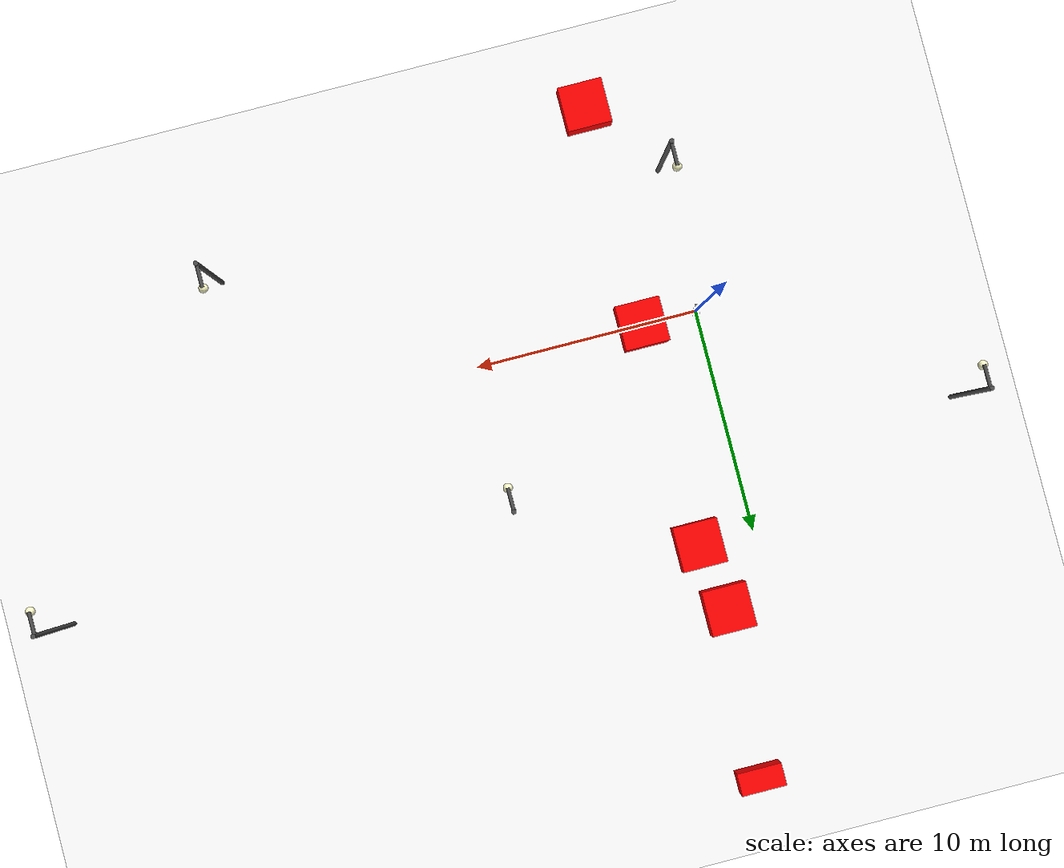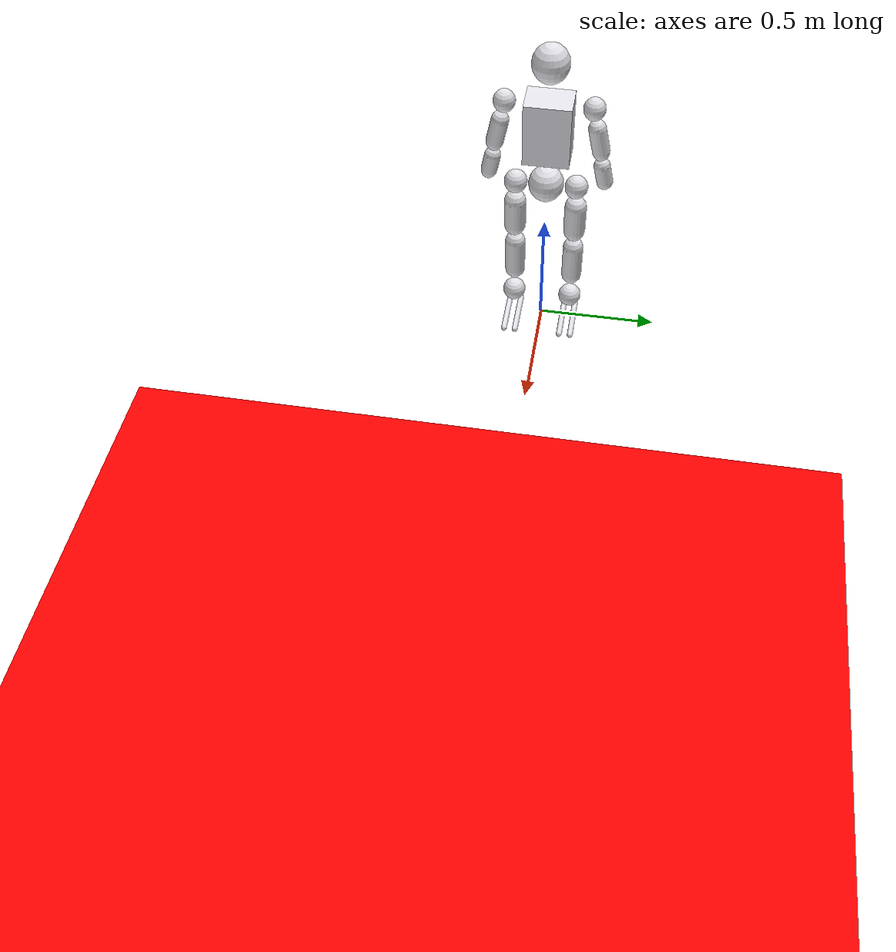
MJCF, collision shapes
<mujoco model="phybot_street_scene">
  <compiler angle="radian" meshdir="../meshes" autolimits="true"/>
  <option timestep="0.002" iterations='10' solver='PGS' gravity='0 0 -9.81' >
  </option>
  <size njmax="2000" nconmax="500" />

  <visual>
      <quality shadowsize='8192'/>
      <map force="0.1" zfar="1000" znear='0.05'/>
      <rgba haze="0.15 0.25 0.35 1"/>
      <global offwidth="2560" offheight="1440" elevation="-20" azimuth="120"/>
  </visual>

  <statistic center="0 0 1" extent="10"/>

  <default>
    <geom  condim='4' solref='0.001 2' friction='1.0 0.5 0.5'/>
    <equality solref='0.001 2'/>
  </default>

  <default>
    <default class="phybot_mini_mark2">
      <joint damping="0.1" armature="0.1"/>
      <default class="visual">
        <geom type="mesh" contype="0" conaffinity="0" group="2" />
      </default>
      <default class="collision">
        <geom group="3" mass="0" density="0" friction="1.0 0.5 0.5" />
      </default>
    </default>

    <!-- 障碍物默认属性：有碰撞，有质量(或固定) -->
    <default class="obstacle">
        <geom condim="3" contype="1" conaffinity="1" friction="0.8 0.5 0.5"/>
    </default>
  </default>

  <!-- ==================== 资源定义 ==================== -->
  <asset>
    <!-- 1. 机器人网格 -->
    <mesh name="base_link" file="base_link.STL"/>
    <mesh name="left_hip_pitch" file="left_hip_pitch.STL"/>
    <mesh name="left_hip_roll" file="left_hip_roll.STL"/>
    <mesh name="left_hip_yaw" file="left_hip_yaw.STL"/>
    <mesh name="left_knee" file="left_knee.STL"/>
    <mesh name="right_ankle_pitch" file="right_ankle_pitch.STL"/>
    <mesh name="left_ankle_roll" file="left_ankle_roll.STL"/>
    <mesh name="right_hip_pitch" file="right_hip_pitch.STL"/>
    <mesh name="right_hip_roll" file="right_hip_roll.STL"/>
    <mesh name="right_hip_yaw" file="right_hip_yaw.STL"/>
    <mesh name="right_knee" file="right_knee.STL"/>
    <mesh name="right_ankle_roll" file="right_ankle_roll.STL"/>
    <mesh name="torso" file="torso.STL"/>
    <mesh name="left_shoulder_pitch" file="left_shoulder_pitch.STL"/>
    <mesh name="left_shoulder_roll" file="left_shoulder_roll.STL"/>
    <mesh name="left_shoulder_yaw" file="left_shoulder_yaw.STL"/>
    <mesh name="left_elbow_pitch" file="left_elbow_pitch.STL"/>
    <mesh name="right_shoulder_pitch" file="right_shoulder_pitch.STL"/>
    <mesh name="right_shoulder_roll" file="right_shoulder_roll.STL"/>
    <mesh name="right_shoulder_yaw" file="right_shoulder_yaw.STL"/>
    <mesh name="right_elbow_pitch" file="right_elbow_pitch.STL"/>
    <mesh name="right_elbow_yaw" file="right_elbow_yaw.STL"/>
    <mesh name="neck_yaw" file="neck_yaw.STL"/>
    <mesh name="neck_pitch" file="neck_pitch.STL"/>

    <texture type="skybox" builtin="gradient" rgb1=".3 .5 .7" rgb2="0 0 0" width="32" height="512"/>

    <!-- 2. 场景纹理 -->
    <!-- [ROAD] 地面 -->
    <texture name="tex_asphalt" type="2d" file="textures/sidewalk.png"/>
    <material name="mat_road" texture="tex_asphalt" texrepeat="1 1" reflectance="0" shininess="0" specular="0.1" texuniform="true"/>

    <!-- 人行道 -->
    <texture name="tex_sidewalk" type="2d" file="textures/sidewalk.png"/>
    <material name="mat_sidewalk" texture="tex_sidewalk" texrepeat="2 2.5" reflectance="0" shininess="0" specular="0.1" texuniform="true"/>

    <!--楼房侧面 -->
    <texture name="tex_building" type="2d" file="textures/building1.png"/>

    <!-- 添加 texuniform="true"，texrepeat 为 1 1 (每米重复1次) -->
    <!-- 保证细节清晰 -->
    <material name="mat_building_real_1" texture="tex_building" texrepeat="1 1" texuniform="true" emission="0.3" reflectance="0" shininess="0" rgba="1 1 1 1"/>

    <material name="mat_building_real_2" texture="tex_building" texrepeat="1 1" texuniform="true" emission="0.3" reflectance="0" shininess="0" rgba="0.9 0.9 1.0 1"/>

    <!-- 屋顶 -->
    <texture name="tex_roof" type="2d" builtin="flat" rgb1="0.4 0.4 0.45" width="128" height="128"/>
    <material name="mat_roof" texture="tex_roof" reflectance="0.05"/>

    <!-- 汽车材质 -->
    <material name="mat_car_body" rgba="0.8 0.1 0.1 1" specular="0.8" shininess="0.5" reflectance="0.3"/>
    <material name="mat_car_body_blue" rgba="0.1 0.1 0.8 1" specular="0.8" shininess="0.5" reflectance="0.3"/>
    <material name="mat_car_glass" rgba="0.1 0.1 0.2 0.8" specular="1" shininess="0.9" reflectance="0.5"/>
    <material name="mat_car_wheel" rgba="0.1 0.1 0.1 1" specular="0" shininess="0"/>
    <!-- 行人材质 -->
    <material name="mat_person_1" rgba="0.2 0.6 0.2 1"/>
    <material name="mat_person_2" rgba="0.8 0.5 0.2 1"/>
    <material name="mat_skin" rgba="0.9 0.7 0.6 1"/>
    <!-- 路灯材质 -->
    <material name="mat_pole" rgba="0.3 0.3 0.3 1" specular="0.5" shininess="0.5"/>
    <material name="mat_light_bulb" rgba="1 1 0.8 1" emission="1"/>
    <!-- 路障材质 -->
    <material name="mat_cone_orange" rgba="1 0.5 0 1" reflectance="0.5"/>

    <mesh name="mesh_table_chairs" file="Table And Chairs.obj" scale="0.02 0.02 0.02"/>
    <material name="mat_wood" rgba="0.6 0.4 0.2 1" specular="0.1" shininess="0.1"/>

    <mesh name="mesh_car" file="car.obj" scale="0.03 0.03 0.03"/>
    <material name="mat_car" rgba="0.8 0.1 0.1 1" specular="0.1" shininess="0.1"/>

    <mesh name="mesh_tree" file="tree.obj" scale="0.7 0.7 0.7"/>
    <texture name="tex_tree" type="2d" file="textures/tree.png"/>
    <material name="mat_tree" texture="tex_tree" rgba="0.2 0.8 0.1 1" specular="0.1" shininess="0.1"/>

    <mesh name="mesh_human" file="human.obj" scale="0.015 0.015 0.015"/>
    <material name="mat_human" rgba="0.2 0.4 0.3 1" specular="0.1" shininess="0.1"/>

  </asset>

  <!-- ==================== 场景构建 ==================== -->
  <worldbody>
    <!-- 增加一点环境光(ambient)，确保暗部也有细节 -->
    <light pos="0 0 15" dir="0 0 -1" directional="true" castshadow="true" diffuse="0.9 0.9 0.9" specular="0.1 0.1 0.1"/>

    <!-- 地面 -->
    <geom name="road_ground" type="plane" pos="0 0 0" size="50 50 0.125" material="mat_road" condim="3" conaffinity="1" contype="1" rgba="1 1 1 1"/>

    <!-- 左侧路灯 -->
    <body name="streetlight_L1" pos="-10 6.5 0">
        <geom type="cylinder" size="0.1 3" pos="0 0 3" material="mat_pole" class="obstacle"/> <!-- 柱子 -->
        <geom type="cylinder" size="0.08 0.5" pos="0 -0.5 5.8" euler="1.57 0 0" material="mat_pole" class="obstacle"/> <!-- 横杆 -->
        <geom type="sphere" size="0.2" pos="0 -1.0 5.6" material="mat_light_bulb" class="obstacle"/> <!-- 灯泡 -->
        <light pos="0 -1.0 5.0" dir="0 0 -1" diffuse="0.8 0.8 0.6" attenuation="1 0 0"/> <!-- 真实点光源 -->
    </body>
    <body name="streetlight_L2" pos="10 6.5 0">
        <geom type="cylinder" size="0.1 3" pos="0 0 3" material="mat_pole" class="obstacle"/>
        <geom type="cylinder" size="0.08 0.5" pos="0 -0.5 5.8" euler="1.57 0 0" material="mat_pole" class="obstacle"/>
        <geom type="sphere" size="0.2" pos="0 -1.0 5.6" material="mat_light_bulb" class="obstacle"/>
    </body>
    <body name="streetlight_L3" pos="30 6.5 0">
        <geom type="cylinder" size="0.1 3" pos="0 0 3" material="mat_pole" class="obstacle"/>
        <geom type="cylinder" size="0.08 0.5" pos="0 -0.5 5.8" euler="1.57 0 0" material="mat_pole" class="obstacle"/>
        <geom type="sphere" size="0.2" pos="0 -1.0 5.6" material="mat_light_bulb" class="obstacle"/>
    </body>
    <!-- 右侧路灯 -->
    <body name="streetlight_R1" pos="0 -6.5 0">
        <geom type="cylinder" size="0.1 3" pos="0 0 3" material="mat_pole" class="obstacle"/>
        <geom type="cylinder" size="0.08 0.5" pos="0 0.5 5.8" euler="1.57 0 0" material="mat_pole" class="obstacle"/>
        <geom type="sphere" size="0.2" pos="0 1.0 5.6" material="mat_light_bulb" class="obstacle"/>
    </body>
    <body name="streetlight_R2" pos="20 -6.5 0">
        <geom type="cylinder" size="0.1 3" pos="0 0 3" material="mat_pole" class="obstacle"/>
        <geom type="cylinder" size="0.08 0.5" pos="0 0.5 5.8" euler="1.57 0 0" material="mat_pole" class="obstacle"/>
        <geom type="sphere" size="0.2" pos="0 1.0 5.6" material="mat_light_bulb" class="obstacle"/>
    </body>
    <!-- 目标点 -->
    <body name="target_marker_body" pos="0 0 0">
        <geom name="target_marker" type="sphere" size="0.01" rgba="0 1 0 1" contype="0" conaffinity="0"/>
    </body>

        <!-- 桌椅障碍物 -->
    <body name="obstacle_furniture" pos="2.5 0 0.05" euler="0 0 0">
        <!-- ================== 视觉层 (Visual) ================== -->
        <!-- group="2" 是之前定义的视觉组，contype/conaffinity=0 表示无物理碰撞 -->
        <geom type="mesh" mesh="mesh_table_chairs" material="mat_wood"
              contype="0" conaffinity="0" group="2"
              pos="0 0 0" euler="1.57 0 0"/>
              <!-- 注意：很多 obj 导入后会躺在地上，通常需要绕 X 轴转 90 度 (1.57 弧度) 立起来，如果方向不对请调整这里 -->
        <!-- ================== 物理层 (Collision) ================== -->
        <!-- 这一层负责“挡路”，用简单的几何体 -->
        <!-- 用一个隐形的大盒子把桌椅全包起来，机器人走不过去 -->
        <!-- 假设桌椅占地 2米x2米，高1米 -->
        <geom type="box" size="1.0 1.0 0.5" pos="0 0 0.5"
              class="obstacle" group="3" rgba="1 0 0 0.5"/>
              <!-- rgba最后一位是0表示全透明(隐形)。调试时可以改成 0.5 看看盒子在哪 -->
    </body>

    <body name="obstacle_furniture1" pos="2 13 0.05" euler="0 0 0">
        <geom type="mesh" mesh="mesh_table_chairs" material="mat_wood"
              contype="0" conaffinity="0" group="2"
              pos="0 0 0" euler="1.57 0 0"/>
        <geom type="box" size="1.0 1.0 0.5" pos="0 0 0.5"
              class="obstacle" group="3" rgba="1 0 0 0.5"/>
    </body>

    <body name="obstacle_tree" pos="2.5 10 -0.1" euler="0 0 0">
	<geom type="mesh" mesh="mesh_tree" material="mat_tree"
	      contype="0" conaffinity="0" group="2"
	      pos="0 0 0" euler="1.57 0 0"/>
	<geom type="box" size="1.0 1.0 0.5" pos="0 0 0.5"
	      class="obstacle" group="3" rgba="1 0 0 0.5"/>
    </body>

    <body name="obstacle_tree1" pos="2.5 -10 -0.1" euler="0 0 0">
	<geom type="mesh" mesh="mesh_tree" material="mat_tree"
	      contype="0" conaffinity="0" group="2"
	      pos="0 0 0" euler="1.57 0 0"/>
	<geom type="box" size="1.0 1.0 0.5" pos="0 0 0.5"
	      class="obstacle" group="3" rgba="1 0 0 0.5"/>
    </body>

    <body name="obstacle_human" pos="2.5 20 -0.1" euler="-1.57 0 0">
	<geom type="mesh" mesh="mesh_human" material="mat_human"
	      contype="0" conaffinity="0" group="2"
	      pos="0 0 0" euler="1.57 0 0"/>
	<geom type="box" size="1.0 1.0 0.5" pos="0 0 0.5"
	      class="obstacle" group="3" rgba="1 0 0 0.5"/>
    </body>

    <!-- 机器人主体 -->
    <body name="base_link" pos="0 0.0 0.695" euler="0 0 0" childclass="phybot_mini_mark2">
      <inertial pos="0.00029935 -1.8119e-07 0.023406" quat="0.999999 0.000213974 0.00165245 0.00039263" mass="3.5" diaginertia="0.01330575 0.01205119 0.00625631"/>
      <joint name="floating_base_joint" type="free" limited="false" actuatorfrclimited="false"/>
      <geom type="mesh" contype="0" conaffinity="0" group="1" density="0" rgba="0.86667 0.86667 0.8902 1" mesh="base_link"/>
      <geom type="sphere" size="0.07" pos="0.00259459 0 0.00656728" rgba="0.86667 0.86667 0.8902 1"/>

      <!-- Left Leg -->
      <body name="left_hip_pitch" pos="0 0.0578 -0.00010315">
        <inertial pos="-0.010451 0.062682 8.8167e-05" quat="0.083119 0.701134 -0.0837025 0.703204" mass="0.91049" diaginertia="0.000839681 0.000776212 0.000684886"/>
        <joint name="left_hip_pitch" pos="0 0 0" axis="0 1 0" range="-2.62 2.62" actuatorfrcrange="-200 200"/>
        <geom pos="0 0 0" type="mesh" contype="0" conaffinity="0" group="1" density="0" rgba="0.86667 0.86667 0.8902 1" mesh="left_hip_pitch"/>
        <geom size="0.046" pos="-0.00436918 0.0615005 -0.00236015" rgba="0.86667 0.86667 0.8902 1"/>
        <body name="left_hip_roll" pos="0 0.0645 0.00010315">
            <inertial pos="0.017315 7.7056e-06 -0.027368" quat="0.938777 0.00153671 0.344522 0.000938653" mass="0.25544" diaginertia="0.000407279 0.00034617 0.000257411"/>
            <joint name="left_hip_roll" pos="0 0 0" axis="1 0 0" range="-0.1 2.79" actuatorfrcrange="-80 80"/>
            <geom type="mesh" contype="0" conaffinity="0" group="1" density="0" rgba="0.86667 0.86667 0.8902 1" mesh="left_hip_roll"/>
            <body name="left_hip_yaw" pos="5.177e-05 0 -0.0555">
                <inertial pos="-0.000660698 -0.000269523 -0.0709022" quat="0.99961 -0.00783722 0.0251877 -0.00915786" mass="1.18423" diaginertia="0.00392986 0.00371214 0.0011681"/>
                <joint name="left_hip_yaw" pos="0 0 0" axis="0 0 1" range="-2.09 2.09" actuatorfrcrange="-58 58"/>
                <geom type="mesh" contype="0" conaffinity="0" group="1" density="0" rgba="0.86667 0.86667 0.8902 1" mesh="left_hip_yaw"/>
                <geom name="sphere_3" size="0.044 0.06" pos="0 0 -0.1" type="capsule" rgba="0.86667 0.86667 0.8902 1"/>
                <body name="left_knee" pos="-0.015 0 -0.178">
                    <inertial pos="0.00788863 8.73965e-05 -0.0948138" quat="0.661405 -0.0155255 -0.0140926 0.749736" mass="1.93631" diaginertia="0.0251976 0.0251419 0.00203863"/>
                    <joint name="left_knee" pos="0 0 0" axis="0 1 0" range="0 2.44" actuatorfrcrange="-80 80"/>
                    <geom type="mesh" contype="0" conaffinity="0" group="1" density="0" rgba="0.86667 0.86667 0.8902 1" mesh="left_knee"/>
                    <geom name="sphere_4" size="0.042 0.075" pos="0 0 -0.16" type="capsule" rgba="0.86667 0.86667 0.8902 1"/>
                    <body name="left_ankle_pitch" pos="0.015 0 -0.324">
                        <inertial pos="-0.000464283 -0.000367434 -0.0356355" quat="0.997287 0.00504669 0.0068855 -0.0731111" mass="1.5" diaginertia="0.00275313 0.00275183 0.000964559"/>
                        <joint name="left_ankle_pitch" pos="0 0 0" axis="0 1 0" range="-1.4 1.4" actuatorfrcrange="-58 58"/>
                        <geom type="mesh" contype="0" conaffinity="0" group="1" density="0" rgba="0.86667 0.86667 0.8902 1" mesh="right_ankle_pitch"/>
                        <geom size="0.048" pos="0 0 -0.0209636" rgba="0.86667 0.86667 0.8902 1"/>
                        <body name="left_ankle_roll" pos="0.038948 4.7715e-05 -0.069">
                            <inertial pos="-0.00706776 4.03562e-05 -0.0350697" quat="0.00111808 0.725531 0.0017096 0.688187" mass="1.36346" diaginertia="0.0069294 0.00649197 0.00171846"/>
                            <joint name="left_ankle_roll" pos="0 0 0" axis="1 0 0" range="-0.61 0.61" actuatorfrcrange="-58 58"/>
                            <geom pos="0 0 0" type="mesh" contype="0" conaffinity="0" group="1" density="0" rgba="0.86667 0.86667 0.8902 1" mesh="left_ankle_roll"/>
                            <geom name="left_ankle_roll_1" size="0.012 0.1" pos="0.008 -0.024 -0.052" quat="0.000563312 0.707388 0.000562864 -0.706825" type="capsule" rgba="0.86667 0.86667 0.8902 1"/>
                            <geom name="left_ankle_roll_2" size="0.012 0.1" pos="0.008 0.024 -0.052" quat="0.000563312 0.707388 0.000562864 -0.706825" type="capsule" rgba="0.86667 0.86667 0.8902 1"/>
                        </body>
                    </body>
                </body>
            </body>
        </body>
      </body>

      <!-- Right Leg -->
      <body name="right_hip_pitch" pos="0 -0.0598 0">
        <inertial pos="-0.0104986 -0.0606821 1.49808e-05" quat="-0.0841103 0.703157 0.0835219 0.701085" mass="0.910488" diaginertia="0.000839521 0.000776107 0.000684841"/>
        <joint name="right_hip_pitch" pos="0 0 0" axis="0 1 0" range="-2.62 2.62" actuatorfrcrange="-200 200"/>
        <geom pos="0 0 0" type="mesh" contype="0" conaffinity="0" group="1" density="0" rgba="0.86667 0.86667 0.8902 1" mesh="right_hip_pitch"/>
        <geom size="0.046" pos="-0.00436918 -0.0615005 -0.00236015" rgba="0.86667 0.86667 0.8902 1"/>
        <body name="right_hip_roll" pos="0 -0.0625 0">
            <inertial pos="0.0172664 8.09741e-06 -0.0273683" quat="0.938745 0.0015365 0.344609 0.000938282" mass="0.255436" diaginertia="0.00040732 0.00034621 0.00025742"/>
            <joint name="right_hip_roll" pos="0 0 0" axis="1 0 0" range="-2.79 0.1" actuatorfrcrange="-80 80"/>
            <geom type="mesh" contype="0" conaffinity="0" group="1" density="0" rgba="0.86667 0.86667 0.8902 1" mesh="right_hip_roll"/>
            <body name="right_hip_yaw" pos="0 0 -0.0555">
                <inertial pos="-0.00162439 0.000656584 -0.113596" quat="0.998814 0.0138718 0.0459246 0.00834949" mass="0.434265" diaginertia="0.00195143 0.00173094 0.000762913"/>
                <joint name="right_hip_yaw" pos="0 0 0" axis="0 0 1" range="-2.09 2.9" actuatorfrcrange="-58 58"/>
                <geom type="mesh" contype="0" conaffinity="0" group="1" density="0" rgba="0.86667 0.86667 0.8902 1" mesh="right_hip_yaw"/>
                <geom size="0.044 0.06" pos="0 0 -0.1" type="capsule" rgba="0.86667 0.86667 0.8902 1"/>
                <body name="right_knee" pos="-0.015 0 -0.178">
                    <inertial pos="0.00748147 0.000468573 -0.0967989" quat="0.723297 -0.0149086 -0.0167715 0.690173" mass="1.87028" diaginertia="0.0249554 0.0249148 0.00200181"/>
                    <joint name="right_knee" pos="0 0 0" axis="0 1 0" range="0 2.44" actuatorfrcrange="-80 80"/>
                    <geom type="mesh" contype="0" conaffinity="0" group="1" density="0" rgba="0.86667 0.86667 0.8902 1" mesh="right_knee"/>
                    <geom size="0.042 0.075" pos="0 0 -0.16" type="capsule" rgba="0.86667 0.86667 0.8902 1"/>
                    <body name="right_ankle_pitch" pos="0.015 0 -0.324">
                        <inertial pos="-0.00043695 0.000369141 -0.0400577" quat="0.999953 -0.00483678 0.00579502 0.0060279" mass="1.5" diaginertia="0.00323949 0.00323821 0.000964532"/>
                        <joint name="right_ankle_pitch" pos="0 0 0" axis="0 1 0" range="-1.4 1.4" actuatorfrcrange="-58 58"/>
                        <geom type="mesh" contype="0" conaffinity="0" group="1" density="0" rgba="0.86667 0.86667 0.8902 1" mesh="right_ankle_pitch"/>
                        <geom size="0.048" pos="0 0 -0.0209636" rgba="0.86667 0.86667 0.8902 1"/>
                        <body name="right_ankle_roll" pos="0.039 -4.436e-05 -0.08">
                            <inertial pos="-0.00935957 6.26081e-05 -0.025329" quat="0.00182563 0.727657 0.000844849 0.685938" mass="1.2444" diaginertia="0.00675175 0.00631519 0.00159091"/>
                            <joint name="right_ankle_roll" pos="0 0 0" axis="1 0 0" range="-0.61 0.61" actuatorfrcrange="-58 58"/>
                            <geom type="mesh" contype="0" conaffinity="0" group="1" density="0" rgba="0.86667 0.86667 0.8902 1" mesh="right_ankle_roll"/>
                            <geom name="right_ankle_roll_1" size="0.012 0.1" pos="0.008 0.024 -0.042" quat="0.000563312 0.707388 0.000562864 -0.706825" type="capsule" rgba="0.86667 0.86667 0.8902 1"/>
                            <geom name="right_ankle_roll_2" size="0.012 0.1" pos="0.008 -0.024 -0.042" quat="0.000563312 0.707388 0.000562864 -0.706825" type="capsule" rgba="0.86667 0.86667 0.8902 1"/>
                        </body>
                    </body>
                </body>
            </body>
        </body>
      </body>

      <!-- Torso and Arms -->
      <body name="waist_yaw" pos="0 0 0.255">
        <inertial pos="-0.000621633 -0.00060824 0.0627254" quat="0.999923 -0.000821252 -0.0121552 -0.00232251" mass="8.843" diaginertia="0.120218 0.108604 0.0328178"/>
        <joint name="waist_yaw" pos="0 0 0" axis="0 0 1" range="-2.62 2.62" actuatorfrcrange="-58 58"/>
        <geom type="mesh" contype="0" conaffinity="0" group="1" density="0" rgba="0.86667 0.86667 0.8902 1" mesh="torso"/>
        <geom size="0.063 0.09 0.125" pos="0.00027658 0.0003768 0" type="box" rgba="0.86667 0.86667 0.8902 1"/>
        <geom pos="0 0 0.148" type="mesh" contype="0" conaffinity="0" group="1" density="0" rgba="0.86667 0.86667 0.8902 1" mesh="neck_yaw"/>
        <geom pos="0 0 0.2075" type="mesh" contype="0" conaffinity="0" group="1" density="0" rgba="0.86667 0.86667 0.8902 1" mesh="neck_pitch"/>
        <geom size="0.07" pos="0 0 0.263466" rgba="0.86667 0.86667 0.8902 1"/>

        <!-- Left Arm -->
        <body name="left_shoulder_pitch" pos="0 0.1065 0.099">
            <inertial pos="0.00071542 0.053508 -3.9443e-09" quat="0.5078 0.492077 -0.5078 0.492077" mass="0.783062" diaginertia="0.00061796 0.000532075 0.000496755"/>
            <joint name="left_shoulder_pitch" pos="0 0 0" axis="0 1 0" range="-2.62 2.62" actuatorfrcrange="-58 58"/>
            <geom pos="0 0 0" type="mesh" contype="0" conaffinity="0" group="1" density="0" rgba="0.86667 0.86667 0.8902 1" mesh="left_shoulder_pitch"/>
            <geom size="0.042" pos="0 0.059495 0" rgba="0.86667 0.86667 0.8902 1"/>
            <body name="left_shoulder_roll" pos="0 0.0575 0">
                <inertial pos="0.022804 0.0039333 -0.017788" quat="0.940833 0.102634 0.321036 0.0351355" mass="0.17719" diaginertia="0.000256392 0.000194645 0.000139602"/>
                <joint name="left_shoulder_roll" pos="0 0 0" axis="1 0 0" range="-0.26 2.62" actuatorfrcrange="-58 58"/>
                <geom type="mesh" contype="0" conaffinity="0" group="1" density="0" rgba="0.86667 0.86667 0.8902 1" mesh="left_shoulder_roll"/>
                <body name="left_shoulder_yaw" pos="0.00125 0.0097398 -0.043933" quat="0.994056 0.108869 0 0">
                    <inertial pos="-0.00020494 -0.0060826 -0.12095" quat="0.997368 0.0724149 -0.00112664 0.00331653" mass="1.24393" diaginertia="0.00517735 0.00508953 0.000754096"/>
                    <joint name="left_shoulder_yaw" pos="0 0 0" axis="0 0 1" range="-1.75 1.75" actuatorfrcrange="-9 9"/>
                    <geom type="mesh" contype="0" conaffinity="0" group="1" density="0" rgba="0.86667 0.86667 0.8902 1" mesh="left_shoulder_yaw"/>
                    <geom size="0.034 0.05" pos="0 0 -0.0868437" type="capsule" rgba="0.86667 0.86667 0.8902 1"/>
                    <body name="left_elbow_pitch" pos="0 0 -0.163">
                        <inertial pos="-0.00164426 -0.00265918 -0.140605" quat="0.974282 0.00758825 -0.012909 -0.224834" mass="1.06257" diaginertia="0.0069157 0.00687241 0.000534144"/>
                        <joint name="left_elbow_pitch" pos="0 0 0" axis="0 1 0" range="-2.27 0.05" actuatorfrcrange="-58 58"/>
                        <geom pos="0 0 0" type="mesh" contype="0" conaffinity="0" group="1" density="0" rgba="0.86667 0.86667 0.8902 1" mesh="left_elbow_pitch"/>
                        <geom size="0.032 0.036" pos="0 -0.00576669 -0.072571" type="capsule" rgba="0.86667 0.86667 0.8902 1"/>
                    </body>
                </body>
            </body>
        </body>

        <!-- Right Arm -->
        <body name="right_shoulder_pitch" pos="0 -0.1065 0.099">
            <inertial pos="0.000715418 -0.0535077 3.94432e-09" quat="0.492077 0.5078 -0.492077 0.5078" mass="0.783062" diaginertia="0.00061796 0.000532075 0.000496755"/>
            <joint name="right_shoulder_pitch" pos="0 0 0" axis="0 1 0" range="-2.62 2.62" actuatorfrcrange="-58 58"/>
            <geom pos="0 0 0" type="mesh" contype="0" conaffinity="0" group="1" density="0" rgba="0.86667 0.86667 0.8902 1" mesh="right_shoulder_pitch"/>
            <geom size="0.042" pos="0 -0.059495 0" rgba="0.86667 0.86667 0.8902 1"/>
            <body name="right_shoulder_roll" pos="0 -0.0575 0">
                <inertial pos="0.0228047 -0.00395395 -0.0177819" quat="0.940632 -0.103353 0.321391 -0.0351805" mass="0.177189" diaginertia="0.000256475 0.000194466 0.00013972"/>
                <joint name="right_shoulder_roll" pos="0 0 0" axis="1 0 0" range="-2.62 0.26" actuatorfrcrange="-58 58"/>
                <geom type="mesh" contype="0" conaffinity="0" group="1" density="0" rgba="0.86667 0.86667 0.8902 1" mesh="right_shoulder_roll"/>
                <body name="right_shoulder_yaw" pos="0.00125 -0.0097398 -0.043933" quat="0.994056 -0.108869 0 0">
                    <inertial pos="-0.000488895 0.00349494 -0.0642143" quat="0.582591 -0.0233421 0.0367723 0.811598" mass="0.51393" diaginertia="0.00151826 0.00151437 0.000271098"/>
                    <joint name="right_shoulder_yaw" pos="0 0 0" axis="0 0 1" range="-1.75 1.75" actuatorfrcrange="-9 9"/>
                    <geom type="mesh" contype="0" conaffinity="0" group="1" density="0" rgba="0.86667 0.86667 0.8902 1" mesh="right_shoulder_yaw"/>
                    <geom size="0.034 0.05" pos="0 0 -0.0868437" type="capsule" rgba="0.86667 0.86667 0.8902 1"/>
                    <body name="right_elbow_pitch" pos="0 0 -0.163">
                        <inertial pos="-0.00163129 -0.0037679 -0.140601" quat="0.974683 -0.00789963 -0.0126972 0.223092" mass="1.06261" diaginertia="0.00691615 0.00687272 0.000534756"/>
                        <joint name="right_elbow_pitch" pos="0 0 0" axis="0 1 0" range="-2.27 0.05" actuatorfrcrange="-58 58"/>
                        <geom type="mesh" contype="0" conaffinity="0" group="1" density="0" rgba="0.86667 0.86667 0.8902 1" mesh="right_elbow_pitch"/>
                        <geom size="0.032 0.036" pos="0 0.00576669 -0.072571" type="capsule" rgba="0.86667 0.86667 0.8902 1"/>
                    </body>
                </body>
            </body>
        </body>

        <camera name="head_camera" pos="0.1 0 0" xyaxes="0 -1 0 0 0 1" fovy="57"/>

        <body name="imu_link" pos="-0.0 0 0.0">
            <inertial pos="0 0 0" mass="0" diaginertia="0 0 0" />
            <geom class="visual" type="sphere" rgba="0.792157 0.819608 0.933333 1" size="0.02" />
            <site name="site_imu" pos="0.01 0 0" size='0.01 0.01 0.01' group="4"/>
        </body>
      </body>
    </body>

     <!-- 轨迹点可视化 -->
    <geom name="goal" type="sphere" size="0.05" rgba="1 0 0 1" pos="0 0 -1"/>
    <!-- 50个轨迹点 -->
    <geom name="traj0" type="sphere" size="0.02" rgba="0 1 0 1" pos="0 0 -1"/>
    <geom name="traj1" type="sphere" size="0.02" rgba="0 1 0 1" pos="0 0 -1"/>
    <geom name="traj2" type="sphere" size="0.02" rgba="0 1 0 1" pos="0 0 -1"/>
    <geom name="traj3" type="sphere" size="0.02" rgba="0 1 0 1" pos="0 0 -1"/>
    <geom name="traj4" type="sphere" size="0.02" rgba="0 1 0 1" pos="0 0 -1"/>
    <geom name="traj5" type="sphere" size="0.02" rgba="0 1 0 1" pos="0 0 -1"/>
    <geom name="traj6" type="sphere" size="0.02" rgba="0 1 0 1" pos="0 0 -1"/>
    <geom name="traj7" type="sphere" size="0.02" rgba="0 1 0 1" pos="0 0 -1"/>
    <geom name="traj8" type="sphere" size="0.02" rgba="0 1 0 1" pos="0 0 -1"/>
    <geom name="traj9" type="sphere" size="0.02" rgba="0 1 0 1" pos="0 0 -1"/>
    <geom name="traj10" type="sphere" size="0.02" rgba="0 1 0 1" pos="0 0 -1"/>
    <geom name="traj11" type="sphere" size="0.02" rgba="0 1 0 1" pos="0 0 -1"/>
    <geom name="traj12" type="sphere" size="0.02" rgba="0 1 0 1" pos="0 0 -1"/>
    <geom name="traj13" type="sphere" size="0.02" rgba="0 1 0 1" pos="0 0 -1"/>
    <geom name="traj14" type="sphere" size="0.02" rgba="0 1 0 1" pos="0 0 -1"/>
    <geom name="traj15" type="sphere" size="0.02" rgba="0 1 0 1" pos="0 0 -1"/>
    <geom name="traj16" type="sphere" size="0.02" rgba="0 1 0 1" pos="0 0 -1"/>
    <geom name="traj17" type="sphere" size="0.02" rgba="0 1 0 1" pos="0 0 -1"/>
    <geom name="traj18" type="sphere" size="0.02" rgba="0 1 0 1" pos="0 0 -1"/>
    <geom name="traj19" type="sphere" size="0.02" rgba="0 1 0 1" pos="0 0 -1"/>
    <geom name="traj20" type="sphere" size="0.02" rgba="0 1 0 1" pos="0 0 -1"/>
    <geom name="traj21" type="sphere" size="0.02" rgba="0 1 0 1" pos="0 0 -1"/>
    <geom name="traj22" type="sphere" size="0.02" rgba="0 1 0 1" pos="0 0 -1"/>
    <geom name="traj23" type="sphere" size="0.02" rgba="0 1 0 1" pos="0 0 -1"/>
    <geom name="traj24" type="sphere" size="0.02" rgba="0 1 0 1" pos="0 0 -1"/>
    <geom name="traj25" type="sphere" size="0.02" rgba="0 1 0 1" pos="0 0 -1"/>
    <geom name="traj26" type="sphere" size="0.02" rgba="0 1 0 1" pos="0 0 -1"/>
    <geom name="traj27" type="sphere" size="0.02" rgba="0 1 0 1" pos="0 0 -1"/>
    <geom name="traj28" type="sphere" size="0.02" rgba="0 1 0 1" pos="0 0 -1"/>
    <geom name="traj29" type="sphere" size="0.02" rgba="0 1 0 1" pos="0 0 -1"/>
    <geom name="traj30" type="sphere" size="0.02" rgba="0 1 0 1" pos="0 0 -1"/>
    <geom name="traj31" type="sphere" size="0.02" rgba="0 1 0 1" pos="0 0 -1"/>
    <geom name="traj32" type="sphere" size="0.02" rgba="0 1 0 1" pos="0 0 -1"/>
    <geom name="traj33" type="sphere" size="0.02" rgba="0 1 0 1" pos="0 0 -1"/>
    <geom name="traj34" type="sphere" size="0.02" rgba="0 1 0 1" pos="0 0 -1"/>
    <geom name="traj35" type="sphere" size="0.02" rgba="0 1 0 1" pos="0 0 -1"/>
    <geom name="traj36" type="sphere" size="0.02" rgba="0 1 0 1" pos="0 0 -1"/>
    <geom name="traj37" type="sphere" size="0.02" rgba="0 1 0 1" pos="0 0 -1"/>
    <geom name="traj38" type="sphere" size="0.02" rgba="0 1 0 1" pos="0 0 -1"/>
    <geom name="traj39" type="sphere" size="0.02" rgba="0 1 0 1" pos="0 0 -1"/>
    <geom name="traj40" type="sphere" size="0.02" rgba="0 1 0 1" pos="0 0 -1"/>
    <geom name="traj41" type="sphere" size="0.02" rgba="0 1 0 1" pos="0 0 -1"/>
    <geom name="traj42" type="sphere" size="0.02" rgba="0 1 0 1" pos="0 0 -1"/>
    <geom name="traj43" type="sphere" size="0.02" rgba="0 1 0 1" pos="0 0 -1"/>
    <geom name="traj44" type="sphere" size="0.02" rgba="0 1 0 1" pos="0 0 -1"/>
    <geom name="traj45" type="sphere" size="0.02" rgba="0 1 0 1" pos="0 0 -1"/>
    <geom name="traj46" type="sphere" size="0.02" rgba="0 1 0 1" pos="0 0 -1"/>
    <geom name="traj47" type="sphere" size="0.02" rgba="0 1 0 1" pos="0 0 -1"/>
    <geom name="traj48" type="sphere" size="0.02" rgba="0 1 0 1" pos="0 0 -1"/>
    <geom name="traj49" type="sphere" size="0.02" rgba="0 1 0 1" pos="0 0 -1"/>
  </worldbody>

  <actuator>
      <motor name="left_hip_pitch" joint="left_hip_pitch" gear="1" ctrllimited="true" ctrlrange="-200 200" />
      <motor name="left_hip_roll" joint="left_hip_roll" gear="1" ctrllimited="true" ctrlrange="-136 136" />
      <motor name="left_hip_yaw" joint="left_hip_yaw" gear="1" ctrllimited="true" ctrlrange="-96 96" />
      <motor name="left_knee" joint="left_knee" gear="1" ctrllimited="true" ctrlrange="-136 136" />
      <motor name="left_ankle_pitch" joint="left_ankle_pitch" gear="1" ctrllimited="true" ctrlrange="-96.0 96.0" />
      <motor name="left_ankle_roll" joint="left_ankle_roll" gear="1" ctrllimited="true" ctrlrange="-96 96" />
      <motor name="right_hip_pitch" joint="right_hip_pitch" gear="1" ctrllimited="true" ctrlrange="-244 244" />
      <motor name="right_hip_roll" joint="right_hip_roll" gear="1" ctrllimited="true" ctrlrange="-136 136" />
      <motor name="right_hip_yaw" joint="right_hip_yaw" gear="1" ctrllimited="true" ctrlrange="-96 96" />
      <motor name="right_knee" joint="right_knee" gear="1" ctrllimited="true" ctrlrange="-136 136" />
      <motor name="right_ankle_pitch" joint="right_ankle_pitch" gear="1" ctrllimited="true" ctrlrange="-96.0 96.0" />
      <motor name="right_ankle_roll" joint="right_ankle_roll" gear="1" ctrllimited="true" ctrlrange="-96 96" />
      <motor name="waist_yaw" joint="waist_yaw" gear="1" ctrllimited="true" ctrlrange="-96 96" />
      <motor name="left_shoulder_pitch" joint="left_shoulder_pitch" gear="1" ctrllimited="true" ctrlrange="-96 96" />
      <motor name="left_shoulder_roll" joint="left_shoulder_roll" gear="1" ctrllimited="true" ctrlrange="-96 96" />
      <motor name="left_shoulder_yaw" joint="left_shoulder_yaw" gear="1" ctrllimited="true" ctrlrange="-12 12" />
      <motor name="left_elbow_pitch" joint="left_elbow_pitch" gear="1" ctrllimited="true" ctrlrange="-96 96" />
      <motor name="right_shoulder_pitch" joint="right_shoulder_pitch" gear="1" ctrllimited="true" ctrlrange="-96 96" />
      <motor name="right_shoulder_roll" joint="right_shoulder_roll" gear="1" ctrllimited="true" ctrlrange="-96 96" />
      <motor name="right_shoulder_yaw" joint="right_shoulder_yaw" gear="1" ctrllimited="true" ctrlrange="-12 12" />
      <motor name="right_elbow_pitch" joint="right_elbow_pitch" gear="1" ctrllimited="true" ctrlrange="-96 96" />
  </actuator>

  <sensor>
      <framequat name="baselink-quat" objtype="site" objname="site_imu" />
      <velocimeter name="baselink-velocity" site="site_imu" />
      <gyro name="baselink-gyro" site="site_imu" />
      <accelerometer name="baselink-baseAcc" site="site_imu" />
  </sensor>

  <keyframe>
    <key name="home"
      qpos="0 0 0.70 1 0 0 0
      -0.15 0 0 0.3 -0.15 0 -0.15 0 0 0.3 -0.15 0
       0 0 0 0 0 0 0 0 0" />
  </keyframe>
</mujoco>
